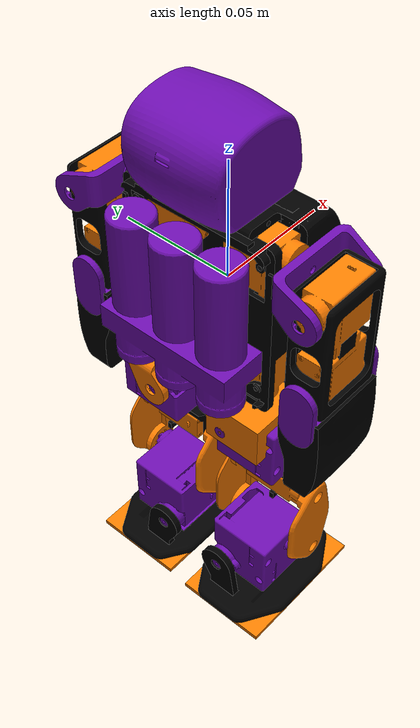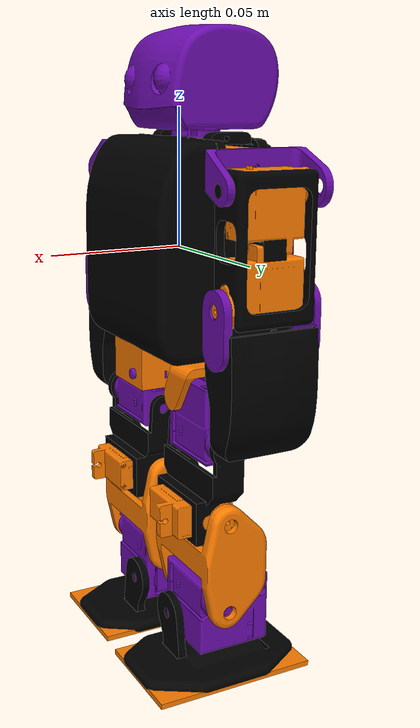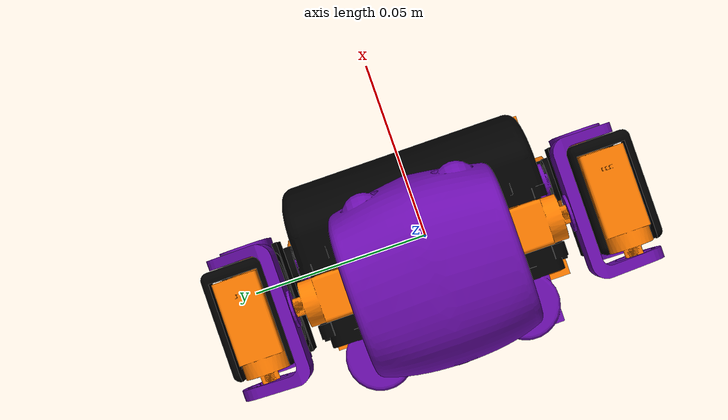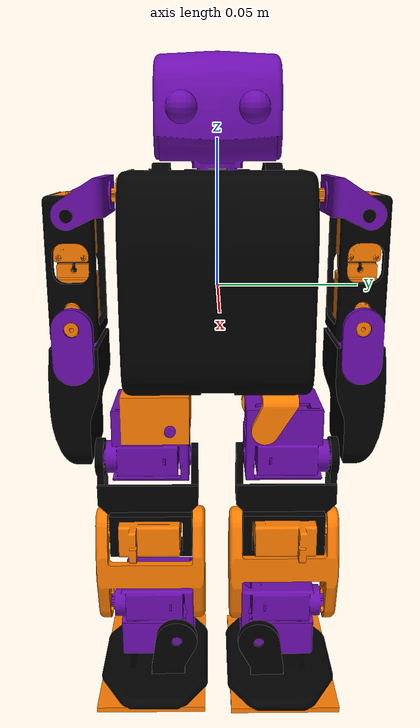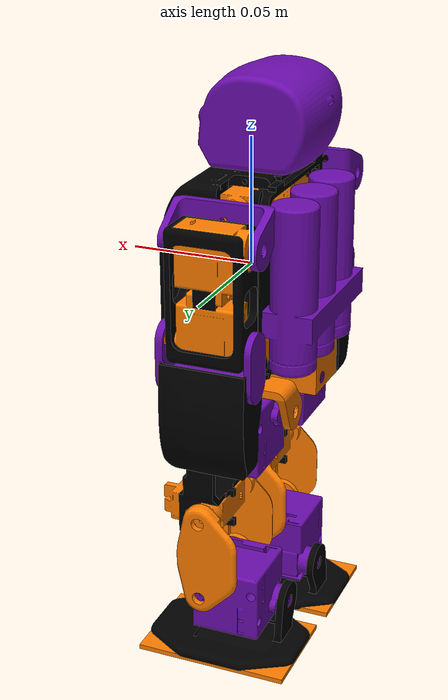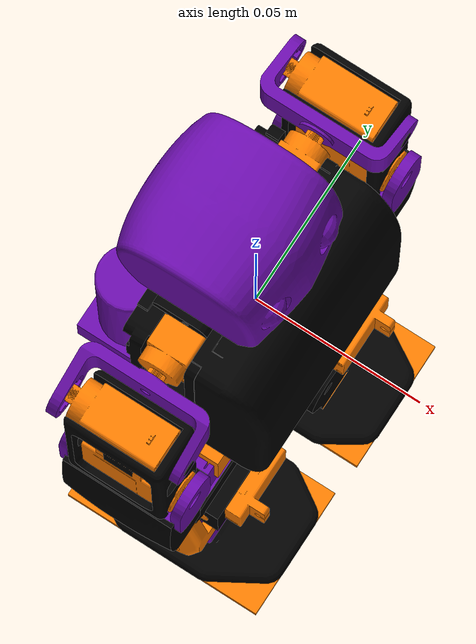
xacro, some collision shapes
<?xml version="1.0"?>
<robot name="plen" xmlns:xacro="http://www.ros.org/wiki/xacro">

  <!-- Include Macros -->
  <xacro:include filename="$(find plen_ros)/urdf/plen_macro.xacro" />
    <!-- Include Gazebo File -->
  <xacro:include filename="$(find plen_ros)/urdf/plen.gazebo.xacro" />

  <!-- Robot description -->
  <!-- Links -->
  <link name="base_footprint"/>

  <!-- TORSO -->
  <xacro:mesh_link name="torso"
              origin_rpy="0 0 0" origin_xyz="0 0 0"
              i_rpy="0 0 0" i_xyz="${0/8000} ${0} ${0/2000}"
              mass="${43.968/1000}"
              ixx="${43.968*(45*45+75*75)/(12*1000000000)}" ixy="${0}" ixz="${0}"
              iyy="${43.968*(45*45+75*75)/(12*1000000000)}" iyz="${0}"
              izz="${43.968*(45*45+48*48)/(12*1000000000)}"
              c_xyz="${0/8000} ${0} ${0/2000}"
              size="${45/1000} ${48/1000} ${75/1000}"
              matname="red_mat"
              rgba="0 0 0 1"
              meshfile="package://plen_ros/meshes/torso.stl"
              meshscale="0.001 0.001 0.001" /> <!-- m to mm -->

  <xacro:mesh_link name="battery"
              origin_rpy="0 0 0" origin_xyz="0 0 0"
              i_rpy="0 0 0" i_xyz="${15/2000} ${0} ${46/4000}"
              mass="${64/1000}"
              ixx="${64*(11*11+46*46)/(12*1000000000)}" ixy="${0}" ixz="${0}"
              iyy="${64*(11*11+46*46)/(12*1000000000)}" iyz="${0}"
              izz="${64*(11*11+51*51)/(12*1000000000)}"
              c_xyz="${15/2000} ${0} ${46/4000}"
              size="${11/1000} ${51/1000} ${46/1000}"
              matname="purple_mat"
              rgba="0.42 0.05 0.68 1"
              meshfile="package://plen_ros/meshes/battery.stl"
              meshscale="0.001 0.001 0.001" />

  <xacro:mesh_link name="head"
              origin_rpy="0 0 0" origin_xyz="0 0 0"
              i_rpy="0 0 0" i_xyz="${0/8000} ${0} ${0/2000}"
              mass="${10/1000}"
              ixx="${10*(40*40+40*40)/(12*1000000000)}" ixy="${0}" ixz="${0}"
              iyy="${10*(40*40+40*40)/(12*1000000000)}" iyz="${0}"
              izz="${10*(40*40+40*40)/(12*1000000000)}"
              c_xyz="${0} ${0} ${0/2000}"
              size="${40/1000} ${40/1000} ${40/1000}"
              matname="purple_mat"
              rgba="0.42 0.05 0.68 1"
              meshfile="package://plen_ros/meshes/head.stl"
              meshscale="0.001 0.001 0.001" />

  <xacro:mesh_link name="rt_servo"
              origin_rpy="0 0 ${pi}" origin_xyz="0 0 0"
              i_rpy="0 0 0" i_xyz="${0} ${25/4000} ${0/2000}"
              mass="${12/1000}"
              ixx="${12*(12*12+25*25)/(12*1000000000)}" ixy="${0}" ixz="${0}"
              iyy="${12*(12*12+25*25)/(12*1000000000)}" iyz="${0}"
              izz="${12*(12*12+25*25)/(12*1000000000)}"
              c_xyz="${0} ${25/4000} ${0/2000}"
              size="${12/1000} ${25/1000} ${25/1000}"
              matname="orange_mat"
              rgba="1 0.49 0 1"
              meshfile="package://plen_ros/meshes/servo.stl"
              meshscale="0.001 0.001 0.001" />

  <xacro:mesh_link name="lt_servo"
              origin_rpy="0 0 ${pi}" origin_xyz="0 0 0"
              i_rpy="0 0 0" i_xyz="${0} ${25/4000} ${0/2000}"
              mass="${12/1000}"
              ixx="${12*(12*12+25*25)/(12*1000000000)}" ixy="${0}" ixz="${0}"
              iyy="${12*(12*12+25*25)/(12*1000000000)}" iyz="${0}"
              izz="${12*(12*12+25*25)/(12*1000000000)}"
              c_xyz="${0} ${25/4000} ${0/2000}"
              size="${12/1000} ${25/1000} ${25/1000}"
              matname="orange_mat"
              rgba="1 0.49 0 1"
              meshfile="package://plen_ros/meshes/servo.stl"
              meshscale="0.001 0.001 0.001" />

  <xacro:mesh_link name="rb_servo"
              origin_rpy="0 0 ${pi}" origin_xyz="0 0 0"
              i_rpy="0 0 0" i_xyz="${0} ${25/4000} ${0/2000}"
              mass="${12/1000}"
              ixx="${12*(12*12+25*25)/(12*1000000000)}" ixy="${0}" ixz="${0}"
              iyy="${12*(12*12+25*25)/(12*1000000000)}" iyz="${0}"
              izz="${12*(12*12+25*25)/(12*1000000000)}"
              c_xyz="${0} ${25/4000} ${0/2000}"
              size="${12/1000} ${25/1000} ${25/1000}"
              matname="orange_mat"
              rgba="1 0.49 0 1"
              meshfile="package://plen_ros/meshes/servo.stl"
              meshscale="0.001 0.001 0.001" />

  <xacro:mesh_link name="lb_servo"
              origin_rpy="0 0 ${pi}" origin_xyz="0 0 0"
              i_rpy="0 0 0" i_xyz="${0} ${25/4000} ${0/2000}"
              mass="${12/1000}"
              ixx="${12*(12*12+25*25)/(12*1000000000)}" ixy="${0}" ixz="${0}"
              iyy="${12*(12*12+25*25)/(12*1000000000)}" iyz="${0}"
              izz="${12*(12*12+25*25)/(12*1000000000)}"
              c_xyz="${0} ${25/4000} ${0/2000}"
              size="${12/1000} ${25/1000} ${25/1000}"
              matname="orange_mat"
              rgba="1 0.49 0 1"
              meshfile="package://plen_ros/meshes/servo.stl"
              meshscale="0.001 0.001 0.001" />

<!-- RIGHT ARM -->
  <xacro:mesh_link name="r_shoulder"
              origin_rpy="0 0 ${0}" origin_xyz="0 0 0"
              i_rpy="0 0 0" i_xyz="${0} ${0} ${25/2000}"
              mass="${2.954/1000}"
              ixx="${2.954*(18*18+25*25)/(12*1000000000)}" ixy="${0}" ixz="${0}"
              iyy="${2.954*(18*18+25*25)/(12*1000000000)}" iyz="${0}"
              izz="${2.954*(18*18+35*35)/(12*1000000000)}"
              c_xyz="${0} ${0} ${25/2000}"
              size="${18/1000} ${35/1000} ${25/1000}"
              matname="purple_mat"
              rgba="0.42 0.05 0.68 1"
              meshfile="package://plen_ros/meshes/shoulder.stl"
              meshscale="0.001 0.001 0.001" />

  <xacro:mesh_link name="rs_servo"
              origin_rpy="0 0 ${pi}" origin_xyz="0 0 0"
              i_rpy="0 0 0" i_xyz="${0} ${25/4000} ${0/2000}"
              mass="${12/1000}"
              ixx="${12*(12*12+25*25)/(12*1000000000)}" ixy="${0}" ixz="${0}"
              iyy="${12*(12*12+25*25)/(12*1000000000)}" iyz="${0}"
              izz="${12*(12*12+25*25)/(12*1000000000)}"
              c_xyz="${0} ${25/4000} ${0/2000}"
              size="${12/1000} ${25/1000} ${25/1000}"
              matname="orange_mat"
              rgba="1 0.49 0 1"
              meshfile="package://plen_ros/meshes/servo.stl"
              meshscale="0.001 0.001 0.001" />

  <xacro:mesh_link name="r_arm"
              origin_rpy="0 0 ${0}" origin_xyz="0 0 0"
              i_rpy="0 0 0" i_xyz="${0} ${0} ${0/2000}"
              mass="${5.091/1000}"
              ixx="${5.091*(15*15+50*50)/(12*1000000000)}" ixy="${0}" ixz="${0}"
              iyy="${5.091*(15*15+50*50)/(12*1000000000)}" iyz="${0}"
              izz="${5.091*(15*15+35*35)/(12*1000000000)}"
              c_xyz="${0} ${0} ${0/2000}"
              size="${15/1000} ${35/1000} ${50/1000}"
              matname="red_mat"
              rgba="0 0 0 1"
              meshfile="package://plen_ros/meshes/arm.stl"
              meshscale="0.001 0.001 0.001" />

  <xacro:mesh_link name="re_servo"
              origin_rpy="0 0 ${pi}" origin_xyz="0 0 0"
              i_rpy="0 0 0" i_xyz="${0} ${25/4000} ${0/2000}"
              mass="${12/1000}"
              ixx="${12*(12*12+25*25)/(12*1000000000)}" ixy="${0}" ixz="${0}"
              iyy="${12*(12*12+25*25)/(12*1000000000)}" iyz="${0}"
              izz="${12*(12*12+25*25)/(12*1000000000)}"
              c_xyz="${0} ${25/4000} ${0/2000}"
              size="${12/1000} ${25/1000} ${25/1000}"
              matname="orange_mat"
              rgba="1 0.49 0 1"
              meshfile="package://plen_ros/meshes/servo.stl"
              meshscale="0.001 0.001 0.001" />

  <xacro:mesh_link name="r_elbow"
              origin_rpy="0 0 ${0}" origin_xyz="${-13.5/1000} 0 0"
              i_rpy="0 0 0" i_xyz="${-27/4000} ${0} ${0/2000}"
              mass="${3.046/1000}"
              ixx="${3.046*(27*27+14*14)/(12*1000000000)}" ixy="${0}" ixz="${0}"
              iyy="${3.046*(27*27+14*14)/(12*1000000000)}" iyz="${0}"
              izz="${3.046*(27*27+34*34)/(12*1000000000)}"
              c_xyz="${-27/4000} ${0} ${0/2000}"
              size="${27/1000} ${34/1000} ${14/1000}"
              matname="purple_mat"
              rgba="0.42 0.05 0.68 1"
              meshfile="package://plen_ros/meshes/elbow.stl"
              meshscale="0.001 0.001 0.001" />

  <xacro:mesh_link name="r_hand"
              origin_rpy="0 0 ${0}" origin_xyz="${0/1000} 0 0"
              i_rpy="0 0 0" i_xyz="${0} ${0} ${0/2000}"
              mass="${8.305/1000}"
              ixx="${8.305*(19*19+35*35)/(12*1000000000)}" ixy="${0}" ixz="${0}"
              iyy="${8.305*(19*19+35*35)/(12*1000000000)}" iyz="${0}"
              izz="${8.305*(19*19+34*34)/(12*1000000000)}"
              c_xyz="${0} ${0} ${0/2000}"
              size="${19/1000} ${34/1000} ${35/1000}"
              matname="red_mat"
              rgba="0 0 0 1"
              meshfile="package://plen_ros/meshes/hand.stl"
              meshscale="0.001 0.001 0.001" />

<!-- LEFT ARM -->
  <xacro:mesh_link name="l_shoulder"
              origin_rpy="0 ${pi} ${pi}" origin_xyz="0 0 0"
              i_rpy="0 0 0" i_xyz="${0} ${0} ${25/2000}"
              mass="${2.954/1000}"
              ixx="${2.954*(18*18+25*25)/(12*1000000000)}" ixy="${0}" ixz="${0}"
              iyy="${2.954*(18*18+25*25)/(12*1000000000)}" iyz="${0}"
              izz="${2.954*(18*18+35*35)/(12*1000000000)}"
              c_xyz="${0} ${0} ${25/2000}"
              size="${18/1000} ${35/1000} ${25/1000}"
              matname="purple_mat"
              rgba="0.42 0.05 0.68 1"
              meshfile="package://plen_ros/meshes/lhip.stl"
              meshscale="0.001 0.001 0.001" />

  <xacro:mesh_link name="ls_servo"
              origin_rpy="0 0 ${pi}" origin_xyz="0 0 0"
              i_rpy="0 0 0" i_xyz="${0} ${25/4000} ${0/2000}"
              mass="${12/1000}"
              ixx="${12*(12*12+25*25)/(12*1000000000)}" ixy="${0}" ixz="${0}"
              iyy="${12*(12*12+25*25)/(12*1000000000)}" iyz="${0}"
              izz="${12*(12*12+25*25)/(12*1000000000)}"
              c_xyz="${0} ${25/4000} ${0/2000}"
              size="${12/1000} ${25/1000} ${25/1000}"
              matname="orange_mat"
              rgba="1 0.49 0 1"
              meshfile="package://plen_ros/meshes/servo.stl"
              meshscale="0.001 0.001 0.001" />

  <xacro:mesh_link name="l_arm"
              origin_rpy="0 0 ${0}" origin_xyz="0 0 0"
              i_rpy="0 0 0" i_xyz="${0} ${0} ${0/2000}"
              mass="${5.091/1000}"
              ixx="${5.091*(15*15+50*50)/(12*1000000000)}" ixy="${0}" ixz="${0}"
              iyy="${5.091*(15*15+50*50)/(12*1000000000)}" iyz="${0}"
              izz="${5.091*(15*15+35*35)/(12*1000000000)}"
              c_xyz="${0} ${0} ${0/2000}"
              size="${15/1000} ${35/1000} ${50/1000}"
              matname="red_mat"
              rgba="0 0 0 1"
              meshfile="package://plen_ros/meshes/arm.stl"
              meshscale="0.001 0.001 0.001" />

  <xacro:mesh_link name="le_servo"
              origin_rpy="0 0 ${pi}" origin_xyz="0 0 0"
              i_rpy="0 0 0" i_xyz="${0} ${25/4000} ${0/2000}"
              mass="${12/1000}"
              ixx="${12*(12*12+25*25)/(12*1000000000)}" ixy="${0}" ixz="${0}"
              iyy="${12*(12*12+25*25)/(12*1000000000)}" iyz="${0}"
              izz="${12*(12*12+25*25)/(12*1000000000)}"
              c_xyz="${0} ${25/4000} ${0/2000}"
              size="${12/1000} ${25/1000} ${25/1000}"
              matname="orange_mat"
              rgba="1 0.49 0 1"
              meshfile="package://plen_ros/meshes/servo.stl"
              meshscale="0.001 0.001 0.001" />

  <xacro:mesh_link name="l_elbow"
              origin_rpy="0 0 ${0}" origin_xyz="${-13.5/1000} 0 0"
              i_rpy="0 0 0" i_xyz="${-27/4000} ${0} ${0/2000}"
              mass="${3.046/1000}"
              ixx="${3.046*(27*27+14*14)/(12*1000000000)}" ixy="${0}" ixz="${0}"
              iyy="${3.046*(27*27+14*14)/(12*1000000000)}" iyz="${0}"
              izz="${3.046*(27*27+34*34)/(12*1000000000)}"
              c_xyz="${-27/4000} ${0} ${0/2000}"
              size="${27/1000} ${34/1000} ${14/1000}"
              matname="purple_mat"
              rgba="0.42 0.05 0.68 1"
              meshfile="package://plen_ros/meshes/elbow.stl"
              meshscale="0.001 0.001 0.001" />

  <xacro:mesh_link name="l_hand"
              origin_rpy="0 0 ${0}" origin_xyz="${0/1000} 0 0"
              i_rpy="0 0 0" i_xyz="${0} ${0} ${0/2000}"
              mass="${8.305/1000}"
              ixx="${8.305*(19*19+35*35)/(12*1000000000)}" ixy="${0}" ixz="${0}"
              iyy="${8.305*(19*19+35*35)/(12*1000000000)}" iyz="${0}"
              izz="${8.305*(19*19+34*34)/(12*1000000000)}"
              c_xyz="${0} ${0} ${0/2000}"
              size="${19/1000} ${34/1000} ${35/1000}"
              matname="red_mat"
              rgba="0 0 0 1"
              meshfile="package://plen_ros/meshes/hand.stl"
              meshscale="0.001 0.001 0.001" />

<!-- RIGHT LEG -->
  <xacro:mesh_link name="r_hip"
              origin_rpy="${pi} ${0} ${pi}" origin_xyz="${0/1000} ${0/1000} ${0/1000}"
              i_rpy="0 0 0" i_xyz="${0} ${0} ${-18/2000}"
              mass="${2.568/1000}"
              ixx="${2.568*(25*25+18*18)/(12*1000000000)}" ixy="${0}" ixz="${0}"
              iyy="${2.568*(25*25+18*18)/(12*1000000000)}" iyz="${0}"
              izz="${2.568*(25*25+35*35)/(12*1000000000)}"
              c_xyz="${0} ${0} ${-18/2000}"
              size="${25/1000} ${35/1000} ${18/1000}"
              matname="orange_mat"
              rgba="1 0.49 0 1"
              meshfile="package://plen_ros/meshes/rhip.stl"
              meshscale="0.001 0.001 0.001" />

  <xacro:mesh_link name="r_thigh"
              origin_rpy="${0} ${0} ${0}" origin_xyz="${-7.5/1000} ${0} ${-7.5/1000}"
              i_rpy="0 0 0" i_xyz="${-14/2000} ${0} ${14/2000}"
              mass="${40/1000}"
              ixx="${40*(28*28+28*28)/(12*1000000000)}" ixy="${0}" ixz="${0}"
              iyy="${40*(28*28+28*28)/(12*1000000000)}" iyz="${0}"
              izz="${40*(28*28+28*28)/(12*1000000000)}"
              c_xyz="${-14/2000} ${0} ${14/2000}"
              size="${28/1000} ${28/1000} ${28/1000}"
              matname="purple_mat"
              rgba="0.42 0.05 0.68 1"
              meshfile="package://plen_ros/meshes/rthigh.stl"
              meshscale="0.001 0.001 0.001" />
              <!-- og mass: 21.617-->

  <xacro:mesh_link name="r_knee"
              origin_rpy="${0} ${0} ${0}" origin_xyz="${0/1000} ${0/1000} ${0/1000}"
              i_rpy="0 0 0" i_xyz="${35/2000} ${-30/2000} ${0/2000}"
              mass="${5.004/1000}"
              ixx="${5.004*(38*38+24*24)/(12*1000000000)}" ixy="${0}" ixz="${0}"
              iyy="${5.004*(38*38+24*24)/(12*1000000000)}" iyz="${0}"
              izz="${5.004*(38*38+30*30)/(12*1000000000)}"
              c_xyz="${35/2000} ${-30/2000} ${0/2000}"
              size="${38/1000} ${30/1000} ${24/1000}"
              matname="red_mat"
              rgba="0 0 0 1"
              meshfile="package://plen_ros/meshes/rknee.stl"
              meshscale="0.001 0.001 0.001" />

  <xacro:mesh_link name="r_knee_servo"
              origin_rpy="0 0 ${pi}" origin_xyz="0 0 0"
              i_rpy="0 0 0" i_xyz="${0} ${25/4000} ${0/2000}"
              mass="${12/1000}"
              ixx="${12*(12*12+25*25)/(12*1000000000)}" ixy="${0}" ixz="${0}"
              iyy="${12*(12*12+25*25)/(12*1000000000)}" iyz="${0}"
              izz="${12*(12*12+25*25)/(12*1000000000)}"
              c_xyz="${0} ${25/4000} ${0/2000}"
              size="${12/1000} ${25/1000} ${25/1000}"
              matname="orange_mat"
              rgba="1 0.49 0 1"
              meshfile="package://plen_ros/meshes/servo.stl"
              meshscale="0.001 0.001 0.001" />

  <xacro:mesh_link name="r_shin"
              origin_rpy="0 ${0} ${0}" origin_xyz="${16.8/1000} ${0} ${-9.1/1000}"
              i_rpy="0 0 0" i_xyz="${36/2000} ${0} ${8/2000}"
              mass="${6.965/1000}"
              ixx="${6.965*(45*45+23*23)/(12*1000000000)}" ixy="${0}" ixz="${0}"
              iyy="${6.965*(45*45+23*23)/(12*1000000000)}" iyz="${0}"
              izz="${6.965*(45*45+40*40)/(12*1000000000)}"
              c_xyz="${36/2000} ${0} ${8/2000}"
              size="${45/1000} ${40/1000} ${23/1000}"
              matname="orange_mat"
              rgba="1 0.49 0 1"
              meshfile="package://plen_ros/meshes/rshin.stl"
              meshscale="0.001 0.001 0.001" />

  <xacro:mesh_link name="r_ankle"
              origin_rpy="${0} ${0} ${0}" origin_xyz="${0/1000} ${0/1000} ${0/1000}"
              i_rpy="0 0 0" i_xyz="${14/2000} ${-14/2000} ${-28/2000}"
              mass="${40/1000}"
              ixx="${40*(28*28+28*28)/(12*1000000000)}" ixy="${0}" ixz="${0}"
              iyy="${40*(28*28+28*28)/(12*1000000000)}" iyz="${0}"
              izz="${40*(28*28+28*28)/(12*1000000000)}"
              c_xyz="${14/2000} ${-14/2000} ${-28/2000}"
              size="${28/1000} ${28/1000} ${28/1000}"
              matname="purple_mat"
              rgba="0.42 0.05 0.68 1"
              meshfile="package://plen_ros/meshes/rankle.stl"
              meshscale="0.001 0.001 0.001" />

  <xacro:mesh_link name="r_foot"
              origin_rpy="0 0 ${0}" origin_xyz="${-8.5/1000} 0 ${-19.8/1000}"
              i_rpy="0 0 0" i_xyz="${-37/4000} ${0} ${-9/1000}"
              mass="${15/1000}"
              ixx="${15*(41*41+4*4)/(12*1000000000)}" ixy="${0}" ixz="${0}"
              iyy="${15*(41*41+4*4)/(12*1000000000)}" iyz="${0}"
              izz="${15*(41*41+62.867*62.867)/(12*1000000000)}"
              c_xyz="${-37/4000} ${0} ${-17/1000}"
              size="${41/1000} ${62.867/1000} ${4/1000}"
              matname="red_mat"
              rgba="0 0 0 1"
              meshfile="package://plen_ros/meshes/rfoot.stl"
              meshscale="0.001 0.001 0.001" />

  <link name="rfs_link">
      <inertial >
            <origin xyz="0 0 0" rpy="0 0 0"/>
            <mass value="0.000008" />
            <inertia ixx="1.28e-08" ixy="0.0" ixz="0.0" iyy="1.28e-08" iyz="0.0" izz="1.28e-08"/>
        </inertial>
        <collision>
            <origin xyz="0 0 0" rpy="0 0 0"/>
            <geometry>
                <box size="${41/1000} ${62.867/1000} ${2/1000}"/>
            </geometry>
        </collision>
        <visual>
            <origin rpy="0.0 0 0" xyz="0 0 0"/>
            <geometry>
                <box size="${41/1000} ${62.867/1000} ${2/1000}"/>
            </geometry>
            <material name="orange_mat">
              <color rgba="1 0.49 0 1" />
            </material>
        </visual>
  </link>

<!-- LEFT LEG -->
  <xacro:mesh_link name="l_hip"
              origin_rpy="${0} ${0} ${pi}" origin_xyz="${0/1000} ${0/1000} ${1/1000}"
              i_rpy="0 0 0" i_xyz="${0} ${0} ${-18/2000}"
              mass="${2.568/1000}"
              ixx="${2.568*(25*25+18*18)/(12*1000000000)}" ixy="${0}" ixz="${0}"
              iyy="${2.568*(25*25+18*18)/(12*1000000000)}" iyz="${0}"
              izz="${2.568*(25*25+35*35)/(12*1000000000)}"
              c_xyz="${0} ${0} ${-18/2000}"
              size="${25/1000} ${35/1000} ${18/1000}"
              matname="orange_mat"
              rgba="1 0.49 0 1"
              meshfile="package://plen_ros/meshes/lhip.stl"
              meshscale="0.001 0.001 0.001" />

  <xacro:mesh_link name="l_thigh"
              origin_rpy="${0} ${pi/2} ${0}" origin_xyz="${0/1000} ${0} ${0/1000}"
              i_rpy="0 0 0" i_xyz="${-28/2000} ${-14/2000} ${-14/2000}"
              mass="${40/1000}"
              ixx="${40*(28*28+28*28)/(12*1000000000)}" ixy="${0}" ixz="${0}"
              iyy="${40*(28*28+28*28)/(12*1000000000)}" iyz="${0}"
              izz="${40*(28*28+28*28)/(12*1000000000)}"
              c_xyz="${-28/2000} ${-14/2000} ${-14/2000}"
              size="${28/1000} ${28/1000} ${28/1000}"
              matname="purple_mat"
              rgba="0.42 0.05 0.68 1"
              meshfile="package://plen_ros/meshes/rankle.stl"
              meshscale="0.001 0.001 0.001" />

  <xacro:mesh_link name="l_knee"
              origin_rpy="${0} ${0} ${0}" origin_xyz="${0/1000} ${0/1000} ${0/1000}"
              i_rpy="0 0 0" i_xyz="${35/2000} ${-2/2000} ${0/2000}"
              mass="${5.004/1000}"
              ixx="${5.004*(38*38+24*24)/(12*1000000000)}" ixy="${0}" ixz="${0}"
              iyy="${5.004*(38*38+24*24)/(12*1000000000)}" iyz="${0}"
              izz="${5.004*(38*38+30*30)/(12*1000000000)}"
              c_xyz="${35/2000} ${-2/2000} ${0/2000}"
              size="${38/1000} ${30/1000} ${24/1000}"
              matname="red_mat"
              rgba="0 0 0 1"
              meshfile="package://plen_ros/meshes/lknee.stl"
              meshscale="0.001 0.001 0.001" />

  <xacro:mesh_link name="l_knee_servo"
              origin_rpy="0 0 ${pi}" origin_xyz="0 0 0"
              i_rpy="0 0 0" i_xyz="${0} ${25/4000} ${0/2000}"
              mass="${12/1000}"
              ixx="${12*(12*12+25*25)/(12*1000000000)}" ixy="${0}" ixz="${0}"
              iyy="${12*(12*12+25*25)/(12*1000000000)}" iyz="${0}"
              izz="${12*(12*12+25*25)/(12*1000000000)}"
              c_xyz="${0} ${25/4000} ${0/2000}"
              size="${12/1000} ${25/1000} ${25/1000}"
              matname="orange_mat"
              rgba="1 0.49 0 1"
              meshfile="package://plen_ros/meshes/servo.stl"
              meshscale="0.001 0.001 0.001" />

  <xacro:mesh_link name="l_shin"
              origin_rpy="0 ${0} ${0}" origin_xyz="${-16.9/1000} ${0} ${-9.1/1000}"
              i_rpy="0 0 0" i_xyz="${-36/2000} ${0} ${8/2000}"
              mass="${6.965/1000}"
              ixx="${6.965*(45*45+23*23)/(12*1000000000)}" ixy="${0}" ixz="${0}"
              iyy="${6.965*(45*45+23*23)/(12*1000000000)}" iyz="${0}"
              izz="${6.965*(45*45+40*40)/(12*1000000000)}"
              c_xyz="${-36/2000} ${0} ${8/2000}"
              size="${45/1000} ${40/1000} ${23/1000}"
              matname="orange_mat"
              rgba="1 0.49 0 1"
              meshfile="package://plen_ros/meshes/rshin.stl"
              meshscale="0.001 0.001 0.001" />

  <xacro:mesh_link name="l_ankle"
              origin_rpy="${0} ${0} ${0}" origin_xyz="${-7.5/1000} ${0/1000} ${-7.5/1000}"
              i_rpy="0 0 0" i_xyz="${-14/2000} ${0/2000} ${14/2000}"
              mass="${40/1000}"
              ixx="${40*(28*28+28*28)/(12*1000000000)}" ixy="${0}" ixz="${0}"
              iyy="${40*(28*28+28*28)/(12*1000000000)}" iyz="${0}"
              izz="${40*(28*28+28*28)/(12*1000000000)}"
              c_xyz="${-14/2000} ${0/2000} ${14/2000}"
              size="${28/1000} ${28/1000} ${28/1000}"
              matname="purple_mat"
              rgba="0.42 0.05 0.68 1"
              meshfile="package://plen_ros/meshes/rthigh.stl"
              meshscale="0.001 0.001 0.001" />

  <xacro:mesh_link name="l_foot"
              origin_rpy="0 0 ${0}" origin_xyz="${8.85/1000} 0 ${-14.2/1000}"
              i_rpy="0 0 0" i_xyz="${37/4000} ${0} ${-9/1000}"
              mass="${15/1000}"
              ixx="${15*(41*41+4*4)/(12*1000000000)}" ixy="${0}" ixz="${0}"
              iyy="${15*(41*41+4*4)/(12*1000000000)}" iyz="${0}"
              izz="${15*(41*41+62.867*62.867)/(12*1000000000)}"
              c_xyz="${37/4000} ${0} ${-17/1000}"
              size="${41/1000} ${62.867/1000} ${4/1000}"
              matname="red_mat"
              rgba="0 0 0 1"
              meshfile="package://plen_ros/meshes/lfoot.stl"
              meshscale="0.001 0.001 0.001" />

  <link name="lfs_link">
      <inertial >
            <origin xyz="0 0 0" rpy="0 0 0"/>
            <mass value="0.000008" />
            <inertia ixx="1.28e-08" ixy="0.0" ixz="0.0" iyy="1.28e-08" iyz="0.0" izz="1.28e-08"/>
        </inertial>
        <collision>
            <origin xyz="0 0 0" rpy="0 0 0"/>
            <geometry>
                <box size="${41/1000} ${62.867/1000} ${2/1000}"/>
            </geometry>
        </collision>
        <visual>
            <origin rpy="0.0 0 0" xyz="0 0 0"/>
            <geometry>
                <box size="${41/1000} ${62.867/1000} ${2/1000}"/>
            </geometry>
            <material name="orange_mat">
              <color rgba="1 0.49 0 1" />
            </material>
        </visual>
  </link>

  <!-- Joints -->
  <!-- TORSO -->
  <xacro:frame_joint name="base_torso" type="fixed"
                    origin_rpy="0 0 0" origin_xyz="0 0 0"
                    parent="base_footprint" child="torso"/>

  <xacro:frame_joint name="torso_batter" type="fixed"
                    origin_rpy="0 0 0" origin_xyz="${-36/1000} 0 ${-12/1000}"
                    parent="torso" child="battery"/>

  <xacro:frame_joint name="torso_head" type="fixed"
                    origin_rpy="0 0 0" origin_xyz="${-6.5/1000} 0 ${56/1000}"
                    parent="torso" child="head"/>

  <xacro:frame_joint name="torso_rt_servo" type="fixed"
                    origin_rpy="${-pi/2} 0 ${pi}" origin_xyz="${-6.6/1000} ${-22/1000} ${30.8/1000}"
                    parent="torso" child="rt_servo"/>

  <xacro:frame_joint name="torso_lt_servo" type="fixed"
                    origin_rpy="${-pi/2} 0 ${0}" origin_xyz="${-6.6/1000} ${22/1000} ${30.8/1000}"
                    parent="torso" child="lt_servo"/>

  <xacro:frame_joint name="torso_rb_servo" type="fixed"
                    origin_rpy="${pi} 0 ${pi}" origin_xyz="${-6.6/1000} ${-22.8/1000} ${-24.75/1000}"
                    parent="torso" child="rb_servo"/>

  <xacro:frame_joint name="torso_lb_servo" type="fixed"
                    origin_rpy="${pi} 0 ${0}" origin_xyz="${-6.6/1000} ${22.8/1000} ${-24.75/1000}"
                    parent="torso" child="lb_servo"/>

  <!-- RIGHT ARM -->
  <xacro:rev_joint name="torso_r_shoulder" number="13" type="revolute"
                    axis_xyz="0 0 1"
                    origin_rpy="${pi/2} ${-pi/2} 0" origin_xyz="${-6.6/1000} ${-38/1000} ${30.8/1000}"
                    parent="torso" child="r_shoulder"
                    effort="0.15" velocity="8"
                    damping="1"
                    friction="1"
                    lower="-1.57"
                    upper="1.57"/>

  <xacro:rev_joint name="r_shoulder_rs_servo" number="14" type="revolute"
                    axis_xyz="0 0 1"
                    origin_rpy="${-pi/2} ${pi/2} ${0}" origin_xyz="${-5.35/1000} ${0.6/1000} ${12.65/1000}"
                    parent="r_shoulder" child="rs_servo"
                    effort="0.15" velocity="8"
                    damping="1"
                    friction="1"
                    lower="-0.15"
                    upper="1.57"/>

  <xacro:frame_joint name="rs_servo_r_arm" type="fixed"
                    origin_rpy="${-pi/2} 0 ${0}" origin_xyz="${0/1000} ${19.5/1000} ${-2/1000}"
                    parent="rs_servo" child="r_arm"/>

  <xacro:frame_joint name="r_arm_re_servo" type="fixed"
                    origin_rpy="${-pi/2} 0 ${0}" origin_xyz="${0/1000} ${2/1000} ${19.5/1000}"
                    parent="r_arm" child="re_servo"/>

  <xacro:rev_joint name="re_servo_r_elbow" number="15" type="revolute"
                    axis_xyz="0 1 0"
                    origin_rpy="${-pi/2} ${0} ${pi/2}" origin_xyz="${0/1000} ${0/1000} ${-1.5/1000}"
                    parent="re_servo" child="r_elbow"
                    effort="0.15" velocity="8"
                    damping="1"
                    friction="1"
                    lower="-0.2"
                    upper="0.35"/>

  <xacro:frame_joint name="r_elbow_r_hand" type="fixed"
                    origin_rpy="${pi} ${pi/2} ${0}" origin_xyz="${-30/1000} ${0/1000} ${0/1000}"
                    parent="r_elbow" child="r_hand"/>

  <!-- LEFT ARM -->
  <xacro:rev_joint name="torso_l_shoulder" number="16" type="revolute"
                    axis_xyz="0 0 1"
                    origin_rpy="${-pi/2} ${-pi/2} ${0}" origin_xyz="${-6.6/1000} ${38/1000} ${30.8/1000}"
                    parent="torso" child="l_shoulder"
                    effort="0.15" velocity="8"
                    damping="1"
                    friction="1"
                    lower="-1.57"
                    upper="1.57"/>

  <xacro:rev_joint name="l_shoulder_ls_servo" number="17" type="revolute"
                    axis_xyz="0 0 1"
                    origin_rpy="${pi/2} ${-pi/2} ${0}" origin_xyz="${-5.35/1000} ${-0.6/1000} ${12.65/1000}"
                    parent="l_shoulder" child="ls_servo"
                    effort="0.15" velocity="8"
                    damping="1"
                    friction="1"
                    lower="-1.57"
                    upper="0.15"/>

  <xacro:frame_joint name="ls_servo_l_arm" type="fixed"
                    origin_rpy="${-pi/2} 0 ${0}" origin_xyz="${0/1000} ${19.5/1000} ${-2/1000}"
                    parent="ls_servo" child="l_arm"/>

  <xacro:frame_joint name="l_arm_le_servo" type="fixed"
                    origin_rpy="${-pi/2} 0 ${0}" origin_xyz="${0/1000} ${2/1000} ${19.5/1000}"
                    parent="l_arm" child="le_servo"/>

  <xacro:rev_joint name="le_servo_l_elbow" number="18" type="revolute"
                    axis_xyz="0 1 0"
                    origin_rpy="${-pi/2} ${0} ${pi/2}" origin_xyz="${0/1000} ${0/1000} ${-1.5/1000}"
                    parent="le_servo" child="l_elbow"
                    effort="0.15" velocity="8"
                    damping="1"
                    friction="1"
                    lower="-0.35"
                    upper="0.2"/>

  <xacro:frame_joint name="l_elbow_l_hand" type="fixed"
                    origin_rpy="${0} ${-pi/2} ${0}" origin_xyz="${-30/1000} ${0/1000} ${0/1000}"
                    parent="l_elbow" child="l_hand"/>

  <!-- RIGHT LEG -->
  <xacro:rev_joint name="rb_servo_r_hip" number="1" type="revolute"
                    axis_xyz="0 0 1"
                    origin_rpy="${pi} 0 ${pi/2}" origin_xyz="${0/1000} ${0/1000} ${14.2/1000}"
                    parent="rb_servo" child="r_hip"
                    effort="0.15" velocity="8"
                    damping="1"
                    friction="1"
                    lower="-1.57"
                    upper="1.57"/>

  <xacro:rev_joint name="r_hip_r_thigh" number="2" type="revolute"
                    axis_xyz="0 1 0"
                    origin_rpy="${pi} 0 0" origin_xyz="${5.45/1000} ${-2/1000} ${-12.81/1000}"
                    parent="r_hip" child="r_thigh"
                    effort="0.15" velocity="8"
                    damping="1"
                    friction="1"
                    lower="-0.15"
                    upper="1.5"/>

  <xacro:rev_joint name="r_thigh_r_knee" number="3" type="revolute"
                    axis_xyz="0 1 0"
                    origin_rpy="${pi/2} ${-pi/2} 0" origin_xyz="${-23/1000} ${7.5/1000} ${12.75/1000}"
                    parent="r_thigh" child="r_knee"
                    effort="0.15" velocity="8"
                    damping="1"
                    friction="1"
                    lower="-0.95"
                    upper="0.75"/>

  <xacro:frame_joint name="r_knee_knee_servo" type="fixed"
                    origin_rpy="${-pi/2} 0 0" origin_xyz="${28/1000} ${-12.8/1000} ${0.5/1000}"
                    parent="r_knee" child="r_knee_servo"/>

  <xacro:rev_joint name="r_knee_r_shin" number="4" type="revolute"
                    axis_xyz="0 1 0"
                    origin_rpy="0 0 0" origin_xyz="${28.1/1000} ${-14.6/1000} ${0.45/1000}"
                    parent="r_knee" child="r_shin"
                    effort="0.15" velocity="8"
                    damping="1"
                    friction="1"
                    lower="-0.9"
                    upper="0.3"/>

  <xacro:rev_joint name="r_shin_r_ankle" number="5" type="revolute"
                    axis_xyz="0 0 1"
                    origin_rpy="${-pi/2} ${-pi/2} ${pi}" origin_xyz="${33.75/1000} ${-17/1000} ${0/1000}"
                    parent="r_shin" child="r_ankle"
                    effort="0.15" velocity="8"
                    damping="1"
                    friction="1"
                    lower="-0.95"
                    upper="1.2"/>

  <xacro:rev_joint name="r_ankle_r_foot" number="6" type="revolute"
                    axis_xyz="0 1 0"
                    origin_rpy="${-pi/2} ${-pi/2} 0" origin_xyz="${4.2/1000} ${-12.7/1000} ${-7.4/1000}"
                    parent="r_ankle" child="r_foot"
                    effort="0.15" velocity="8"
                    damping="1"
                    friction="1"
                    lower="-0.8"
                    upper="0.4"/>

  <joint name="r_foot_r_sensor" type="fixed">
        <parent link="r_foot"/>
        <child link="rfs_link"/>
        <origin xyz="${-37/4000} ${0} ${-18/1000}" rpy="0 0 0"/>
  </joint>

  <!-- LEFT LEG -->
  <xacro:rev_joint name="lb_servo_l_hip" number="7" type="revolute"
                    axis_xyz="0 0 1"
                    origin_rpy="${pi} 0 ${pi/2}" origin_xyz="${0/1000} ${0/1000} ${14.2/1000}"
                    parent="lb_servo" child="l_hip"
                    effort="0.15" velocity="8"
                    damping="1"
                    friction="1"
                    lower="-1.57"
                    upper="1.57"/>

  <xacro:rev_joint name="l_hip_l_thigh" number="8" type="revolute"
                    axis_xyz="1 0 0"
                    origin_rpy="${pi/2} ${0} ${pi/2}" origin_xyz="${5.5/1000} ${17/1000} ${-12.65/1000}"
                    parent="l_hip" child="l_thigh"
                    effort="0.15" velocity="8"
                    damping="1"
                    friction="1"
                    lower="-1.5"
                    upper="0.15"/>

  <xacro:rev_joint name="l_thigh_l_knee" number="9" type="revolute"
                    axis_xyz="0 1 0"
                    origin_rpy="${-pi/2} ${0} ${-pi/2}" origin_xyz="${-7.4/1000} ${-12.8/1000} ${-8.6/1000}"
                    parent="l_thigh" child="l_knee"
                    effort="0.15" velocity="8"
                    damping="1"
                    friction="1"
                    lower="-0.75"
                    upper="0.95"/>

  <xacro:frame_joint name="l_knee_knee_servo" type="fixed"
                    origin_rpy="${-pi/2} ${pi} 0" origin_xyz="${28/1000} ${1.45/1000} ${0/1000}"
                    parent="l_knee" child="l_knee_servo"/>

  <xacro:rev_joint name="l_knee_l_shin" number="10" type="revolute"
                    axis_xyz="0 1 0"
                    origin_rpy="0 ${pi} ${0}" origin_xyz="${28.1/1000} ${-0.2/1000} ${0.45/1000}"
                    parent="l_knee" child="l_shin"
                    effort="0.15" velocity="8"
                    damping="1"
                    friction="1"
                    lower="-0.3"
                    upper="0.9"/>

  <xacro:rev_joint name="l_shin_l_ankle" number="11" type="revolute"
                    axis_xyz="0 1 0"
                    origin_rpy="${pi} ${pi/2} ${0}" origin_xyz="${-33.75/1000} ${-2/1000} ${0/1000}"
                    parent="l_shin" child="l_ankle"
                    effort="0.15" velocity="8"
                    damping="1"
                    friction="1"
                    lower="-1.2"
                    upper="0.95"/>

  <xacro:rev_joint name="l_ankle_l_foot" number="12" type="revolute"
                    axis_xyz="0 1 0"
                    origin_rpy="${pi} ${0} ${-pi/2}" origin_xyz="${-4.2/1000} ${7.5/1000} ${12.8/1000}"
                    parent="l_ankle" child="l_foot"
                    effort="0.15" velocity="8"
                    damping="1"
                    friction="1"
                    lower="-0.4"
                    upper="0.8"/> <!-- effort and velocity taken from FEETECH FS90-FB datasheet -->

  <joint name="l_foot_l_sensor" type="fixed">
        <parent link="l_foot"/>
        <child link="lfs_link"/>
        <origin xyz="${37/4000} ${0} ${-18/1000}" rpy="0 0 0"/>
  </joint>

</robot>

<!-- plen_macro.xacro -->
<robot xmlns:xacro="http://www.ros.org/wiki/xacro">

  <xacro:macro name="rev_joint" params="name number type axis_xyz origin_rpy origin_xyz parent child effort velocity damping friction upper lower">
    <joint name="${name}" type="${type}">
      <axis xyz="${axis_xyz}" />
      <origin rpy="${origin_rpy}" xyz="${origin_xyz}" />
      <parent link="${parent}" />
      <child link="${child}" />
      <limit effort="${effort}" velocity="${velocity}" lower="${lower}" upper="${upper}"/>
      <joint_properties damping="${damping}" friction="${friction}" />
    </joint>

    <transmission name="tran${number}">
    <type>transmission_interface/SimpleTransmission</type>
    <joint name="${name}">
      <hardwareInterface>hardware_interface/EffortJointInterface</hardwareInterface>
    </joint>
    <actuator name="motor${number}">
      <mechanicalReduction>1</mechanicalReduction>
    </actuator>
    </transmission>
  </xacro:macro>

  <xacro:macro name="frame_joint" params="name type origin_rpy origin_xyz parent child">
    <joint name="${name}" type="${type}">
      <origin rpy="${origin_rpy}" xyz="${origin_xyz}" />
      <parent link="${parent}" />
      <child link="${child}" />
    </joint>
  </xacro:macro>

  <xacro:macro name="mesh_link" params="name origin_xyz origin_rpy meshfile meshscale size c_xyz matname rgba mass i_xyz i_rpy ixx ixy ixz iyy iyz izz">
    <link name="${name}">
      <visual>
        <origin rpy="${origin_rpy}" xyz="${origin_xyz}" />
        <geometry>
          <mesh filename="${meshfile}" scale="${meshscale}"/>
        </geometry>
        <material name="${matname}">
          <color rgba="${rgba}" />
        </material>
      </visual>

      <collision>
        <origin rpy="${origin_rpy}" xyz="${c_xyz}" />
        <geometry>
          <box size="${size}" />
        </geometry>
      </collision>

      <inertial>
        <mass value="${mass}" />
        <origin rpy="${i_rpy}" xyz="${i_xyz}" /> <!-- Inertial Axes -->
        <inertia ixx="${ixx}" ixy="${ixy}" ixz="${ixz}" iyx="${ixy}" iyy="${iyy}" iyz="${iyz}" izx="${ixz}" izy="${iyz}" izz="${izz}" />
      </inertial>
    </link>
  </xacro:macro>

</robot>
